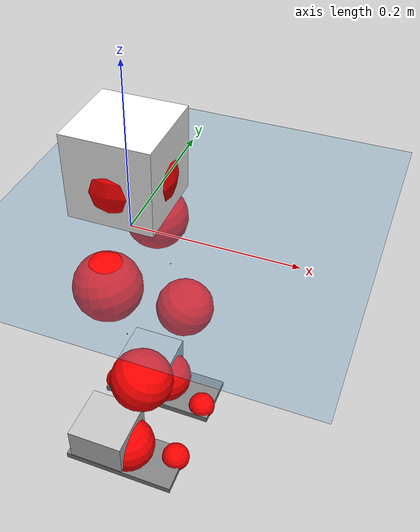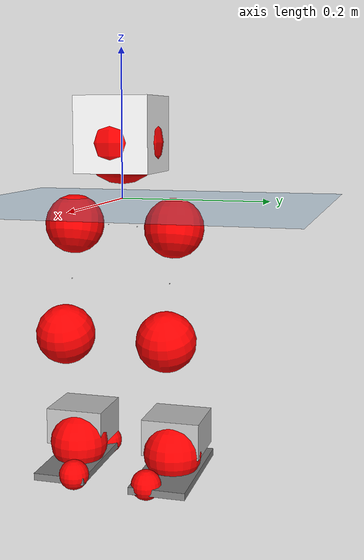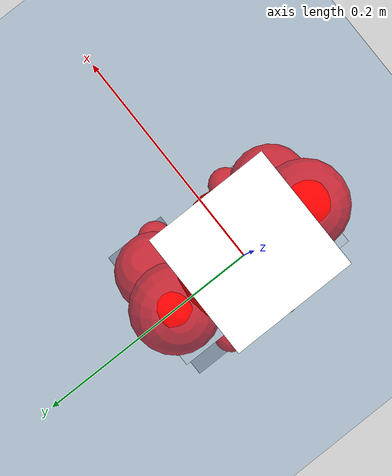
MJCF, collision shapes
<mujoco model="pi_12dof_release_v1">
  <compiler angle="radian" assetdir="assets" balanceinertia="true" inertiafromgeom="false"/>

  <option timestep="0.005" density="1.2" viscosity="2e-05"/>

  <size nkey="1"/>

  <visual>
    <quality shadowsize="8192"/>
    <map shadowclip="0.5"/>
  </visual>

  <default>
    <default class="/">
      <joint armature="0.01" damping="0.01" frictionloss="0.01"/>
      <geom contype="0" conaffinity="0" group="1" solref="-1000 -80"/>
      <site size="0.01 0.005 0.005" group="5"/>
      <general forcelimited="true" biastype="affine" gainprm="20" biasprm="0 -20 -0.5"/>
      <default class="foot">
        <geom size="0.0845 0.036 0.005" type="box" condim="6" group="4" priority="1" friction="0.9 0.2 0.2" solimp="0.015 1 0.005"/>
      </default>
      <default class="reward_collision_sphere">
        <geom group="5" rgba="1 0 0 1"/>
      </default>
    </default>
  </default>

  <asset>
    <texture type="skybox" colorspace="auto" name="//unnamed_texture_0" builtin="gradient" rgb1="0.95 0.95 0.95" rgb2="0.95 0.95 0.95" width="100" height="600"/>
    <texture type="2d" colorspace="auto" name="texplane" builtin="checker" rgb1="0.345 0.575 0.748" rgb2="0.345 0.575 0.748" markrgb="1 1 1" width="512" height="512"/>
    <material name="MatPlane" class="/" texture="texplane" texuniform="true" texrepeat="2 2" specular="0.9"/>
    <mesh name="baselink_1" class="/" file="baselink_1.STL"/>
    <mesh name="r_hip_pitch_link" class="/" file="r_hip_pitch_link.STL"/>
    <mesh name="r_hip_roll_link" class="/" file="r_hip_roll_link.STL"/>
    <mesh name="r_thigh_link" class="/" file="r_thigh_link.STL"/>
    <mesh name="r_calf_link" class="/" file="r_calf_link.STL"/>
    <mesh name="r_ankle_pitch_link" class="/" file="r_ankle_pitch_link.STL"/>
    <mesh name="r_ankle_roll_link" class="/" file="r_ankle_roll_link.STL"/>
    <mesh name="l_hip_pitch_link" class="/" file="l_hip_pitch_link.STL"/>
    <mesh name="l_hip_roll_link" class="/" file="l_hip_roll_link.STL"/>
    <mesh name="l_thigh_link" class="/" file="l_thigh_link.STL"/>
    <mesh name="l_calf_link" class="/" file="l_calf_link.STL"/>
    <mesh name="l_ankle_pitch_link" class="/" file="l_ankle_pitch_link.STL"/>
    <mesh name="l_ankle_roll_link" class="/" file="l_ankle_roll_link.STL"/>
  </asset>

  <worldbody>
    <geom name="floor" class="/" size="100 100 0.125" type="plane" group="0" material="MatPlane"/>
    <light name="toplight_shadow" class="/" pos="0 0 5" dir="0.0990148 0.0990148 -0.990148" type="directional" ambient="0.04 0.04 0.04" diffuse="0.55 0.55 0.55" specular="0.12 0.12 0.12"/>
    <light name="toplight_fill" class="/" pos="0 0 5" dir="0.0990148 0.0990148 -0.990148" type="directional" castshadow="false" ambient="0.04 0.04 0.04" diffuse="0.3 0.3 0.3" specular="0.08 0.08 0.08"/>
    <body name="trunk" pos="0.000236033 -9.82266e-05 -0.000792957" quat="1 7.48707e-05 0.000465593 0.000149932">
      <inertial pos="0.000383169 -0.00190167 0.0446425" quat="0.695395 0.00947272 0.00927565 0.718506" mass="2.26734" diaginertia="0.0121718 0.00529675 0.00631345"/>
      <joint name="//unnamed_joint_0" type="free"/>
      <geom name="//unnamed_geom_1" class="/" type="mesh" density="0" rgba="1 1 1 1" mesh="baselink_1"/>
      <geom name="//unnamed_geom_2" class="/" size="0.0504747 0.0504747 0.0504747" pos="0 0 0.086872" type="box" rgba="1 1 1 1"/>
      <geom name="//unnamed_geom_3" class="reward_collision_sphere" size="0.0555221" pos="0 0 0.076013"/>
      <site name="imu" class="/" pos="0.00673286 0.000453202 -0.00663346" size="0.0100949"/>
      <camera name="track" class="/" pos="0 -1.79703 0" quat="0.707107 0.707107 0 0" mode="trackcom"/>
      <camera name="ego_camera" class="/" pos="0.0783048 0 0.195462" quat="-0.5 -0.5 0.5 0.5"/>
      <body name="r_hip_pitch_link" pos="-0.000166825 -0.0200933 -0.0349469" quat="0.992201 -5.48878e-05 -0.124649 3.35666e-05">
        <inertial pos="0.00110379 -0.0507285 4.74416e-05" quat="-0.0190398 0.70603 -0.0283246 0.707359" mass="0.366963" diaginertia="0.000131211 5.56859e-05 0.000122098"/>
        <joint name="r_hip_pitch_joint" class="/" pos="0 0 0" axis="0.00181938 -0.99999 0.00398228" range="-1.73857 1.21766" armature="0.00964666" damping="0.0131094" frictionloss="0.0105874"/>
        <geom name="//unnamed_geom_4" class="/" type="mesh" density="0" rgba="0.75294 0.75294 0.75294 1" mesh="r_hip_pitch_link"/>
        <geom name="//unnamed_geom_5" class="/" size="0.000504747 0.000504747 0.000504747" type="box" rgba="0.75294 0.75294 0.75294 1"/>
        <body name="r_hip_roll_link" pos="0.00105535 -0.0482599 -0.000529686" quat="1 -8.31345e-06 0.00025238 0.000413942">
          <inertial pos="-0.000643429 9.01291e-06 -0.0674087" quat="0.705592 -0.0802055 -0.082137 0.699257" mass="0.399174" diaginertia="0.000412996 0.000158656 0.00019187"/>
          <joint name="r_hip_roll_joint" class="/" pos="0 0 0" axis="-1 -6.00836e-05 0.000895007" stiffness="0.000274325" range="-0.109309 0.495522" armature="0.0103902" damping="0" frictionloss="0.0108551"/>
          <geom name="//unnamed_geom_6" class="/" type="mesh" density="0" rgba="0.75294 0.75294 0.75294 1" mesh="r_hip_roll_link"/>
          <geom name="//unnamed_geom_7" class="/" size="0.000504747 0.000504747 0.000504747" type="box" rgba="0.75294 0.75294 0.75294 1"/>
          <geom name="//unnamed_geom_8" class="reward_collision_sphere" size="0.0403797"/>
          <body name="r_thigh_link" pos="-9.84064e-05 0.00187356 -0.0750059" quat="1 -8.7779e-05 0.000127588 5.51375e-05">
            <inertial pos="-5.46011e-05 0.000348329 -0.0505738" quat="0.737384 0.675473 -0.000441431 0.000953808" mass="0.115697" diaginertia="0.000153097 5.54368e-05 8.72027e-05"/>
            <joint name="r_thigh_joint" class="/" pos="0 0 0" axis="0.000132725 -0.00038453 -1" range="-0.29973 0.597309" armature="0.0108765" damping="0.00972111" frictionloss="0.00961771"/>
            <geom name="//unnamed_geom_9" class="/" type="mesh" density="0" rgba="0.75294 0.75294 0.75294 1" mesh="r_thigh_link"/>
            <geom name="//unnamed_geom_10" class="/" size="0.000504747 0.000504747 0.000504747" type="box" rgba="0.75294 0.75294 0.75294 1"/>
            <body name="r_calf_link" pos="-0.00134184 -0.00347411 -0.0762825" quat="0.947643 -3.24903e-05 0.319332 3.74329e-05">
              <inertial pos="5.09584e-06 -0.00291941 -0.0754495" quat="0.999946 0.00166725 0.00680201 0.00763619" mass="0.839774" diaginertia="0.00437295 0.00209396 0.000264707"/>
              <joint name="r_calf_joint" class="/" pos="0 0 0" axis="0.0030543 -0.999995 -0.00113584" stiffness="0.0017505" range="-1.65104 0.628592" armature="0.0106348" damping="0.0114601" frictionloss="0.0102019"/>
              <geom name="//unnamed_geom_11" class="/" type="mesh" density="0" rgba="0.75294 0.75294 0.75294 1" mesh="r_calf_link"/>
              <geom name="//unnamed_geom_12" class="/" size="0.000504747 0.000504747 0.000504747" type="box" rgba="0.75294 0.75294 0.75294 1"/>
              <geom name="//unnamed_geom_13" class="reward_collision_sphere" size="0.0403797"/>
              <body name="r_ankle_pitch_link" pos="8.32586e-05 0.00127124 -0.152847" quat="0.980009 -4.72463e-05 -0.198952 -0.000275926">
                <inertial pos="0.0062536 0.00340313 0.000549859" quat="0.00322972 0.70873 0.000335495 0.705472" mass="0.180955" diaginertia="0.00038284 0.000128414 0.000183294"/>
                <joint name="r_ankle_pitch_joint" class="/" pos="0 0 0" axis="0.00336303 -0.999994 0.000768111" range="-1.27937 0.493317" armature="0.00972554" damping="0.00329067" frictionloss="0.00989433"/>
                <geom name="//unnamed_geom_14" class="/" type="mesh" density="0" rgba="0.75294 0.75294 0.75294 1" mesh="r_ankle_pitch_link"/>
                <geom name="//unnamed_geom_15" class="/" size="0.0393702 0.0403797 0.0252373" type="box" rgba="0.75294 0.75294 0.75294 1"/>
                <body name="r_ankle_roll_link" pos="0.0801807 0.00380809 -0.000187168" quat="1 -0.000295638 8.02539e-05 -0.000171144">
                  <inertial pos="-0.0252975 0.000115392 -0.0160838" quat="0.560069 0.424021 0.439232 0.560004" mass="0.530569" diaginertia="0.00139197 0.000613614 0.000430316"/>
                  <joint name="r_ankle_roll_joint" class="/" pos="0 0 0" axis="-0.999995 0.000125378 0.00312964" range="-0.159082 0.143907" armature="0.0108592" damping="0.00619269" frictionloss="0.00995206"/>
                  <geom name="//unnamed_geom_16" class="/" type="mesh" density="0" rgba="0.75294 0.75294 0.75294 1" mesh="r_ankle_roll_link"/>
                  <geom name="//unnamed_geom_17" class="/" type="mesh" rgba="0.75294 0.75294 0.75294 1" mesh="r_ankle_roll_link"/>
                  <geom name="right_foot" class="foot" size="0.0806232 0.0353951 0.00477904" pos="-0.0532473 0 -0.0477796"/>
                  <geom name="//unnamed_geom_19" class="reward_collision_sphere" size="0.0403797" pos="-0.0522032 0 -0.021718"/>
                  <geom name="//unnamed_geom_20" class="reward_collision_sphere" size="0.0201899" pos="0.015661 0.0179703 -0.043436"/>
                  <geom name="//unnamed_geom_21" class="reward_collision_sphere" size="0.0201899" pos="-0.125288 0.0179703 -0.043436"/>
                  <site name="right_foot" class="foot" pos="-0.0532473 0 -0.0477796" size="0.0100949"/>
                </body>
              </body>
            </body>
          </body>
        </body>
      </body>
      <body name="l_hip_pitch_link" pos="0.000801395 0.0211598 -0.0366354" quat="0.992195 1.70459e-06 -0.124693 2.11118e-05">
        <inertial pos="0.000835406 0.0479241 -0.00181731" quat="-0.0390288 0.704544 0.0285585 0.70801" mass="0.408754" diaginertia="0.000166322 6.26455e-05 0.0001566"/>
        <joint name="l_hip_pitch_joint" class="/" pos="0 0 0" axis="0.00232764 0.999997 -0.00109487" range="-1.24155 1.75533" armature="0.00996587" damping="0.00812094" frictionloss="0.0102866"/>
        <geom name="//unnamed_geom_22" class="/" type="mesh" density="0" rgba="0.75294 0.75294 0.75294 1" mesh="l_hip_pitch_link"/>
        <geom name="//unnamed_geom_23" class="/" size="0.000504747 0.000504747 0.000504747" type="box" rgba="0.75294 0.75294 0.75294 1"/>
        <body name="l_hip_roll_link" pos="-0.000431313 0.0514571 -0.000454172" quat="1 3.08406e-05 -0.000350676 -0.000135231">
          <inertial pos="-0.00334237 -0.00084878 -0.0680073" quat="0.699086 -0.0753092 -0.077789 0.706793" mass="0.405453" diaginertia="0.000404965 0.000162537 0.000192381"/>
          <joint name="l_hip_roll_joint" class="/" pos="0 0 0" axis="-0.999996 0.00216943 0.00161415" range="-0.515828 0.118113" armature="0.0101952" damping="0.00658594" frictionloss="0.0104959"/>
          <geom name="//unnamed_geom_24" class="/" type="mesh" density="0" rgba="0.75294 0.75294 0.75294 1" mesh="l_hip_roll_link"/>
          <geom name="//unnamed_geom_25" class="/" size="0.000504747 0.000504747 0.000504747" type="box" rgba="0.75294 0.75294 0.75294 1"/>
          <geom name="//unnamed_geom_26" class="reward_collision_sphere" size="0.0403797"/>
          <body name="l_thigh_link" pos="0.000179835 -0.00130319 -0.0742194" quat="1 4.27336e-05 0.000177766 0.000154824">
            <inertial pos="-0.000583448 -0.000770977 -0.050692" quat="0.676421 0.736511 -0.0014728 0.00199223" mass="0.118869" diaginertia="0.000159604 5.74277e-05 8.8991e-05"/>
            <joint name="l_thigh_joint" class="/" pos="0 0 0" axis="0.000894755 0.00117679 -0.999999" range="-0.631062 0.310309" armature="0.0097336" damping="0.00272191" frictionloss="0.0100487"/>
            <geom name="//unnamed_geom_27" class="/" type="mesh" density="0" rgba="0.75294 0.75294 0.75294 1" mesh="l_thigh_link"/>
            <geom name="//unnamed_geom_28" class="/" size="0.000504747 0.000504747 0.000504747" type="box" rgba="0.75294 0.75294 0.75294 1"/>
            <body name="l_calf_link" pos="0.00135812 0.00087737 -0.0770105" quat="0.947671 0.000311 0.319248 0.000214576">
              <inertial pos="0.00116551 0.00198542 -0.0777863" quat="0.999904 0.0115738 -0.00590687 0.00479972" mass="0.823266" diaginertia="0.00425752 0.00199935 0.00025768"/>
              <joint name="l_calf_joint" class="/" pos="0 0 0" axis="0.00128465 0.999999 -0.000250906" range="-0.653781 1.63538" armature="0.0103155" damping="0.00204213" frictionloss="0.0096556"/>
              <geom name="//unnamed_geom_29" class="/" type="mesh" density="0" rgba="0.75294 0.75294 0.75294 1" mesh="l_calf_link"/>
              <geom name="//unnamed_geom_30" class="/" size="0.000504747 0.000504747 0.000504747" type="box" rgba="0.75294 0.75294 0.75294 1"/>
              <geom name="//unnamed_geom_31" class="reward_collision_sphere" size="0.0403797"/>
              <body name="l_ankle_pitch_link" pos="0.0021928 -0.00045987 -0.153347" quat="0.980046 0.000273165 -0.198768 5.73718e-05">
                <inertial pos="0.00476411 -0.00162011 0.00024496" quat="-0.00186854 0.707501 0.00228274 0.706706" mass="0.182055" diaginertia="0.000383733 0.000130362 0.000180952"/>
                <joint name="l_ankle_pitch_joint" class="/" pos="0 0 0" axis="0.00121099 0.999999 0.000937448" range="-0.487675 1.31322" armature="0.0103091" damping="0.00885776" frictionloss="0.00960406"/>
                <geom name="//unnamed_geom_32" class="/" type="mesh" density="0" rgba="0.75294 0.75294 0.75294 1" mesh="l_ankle_pitch_link"/>
                <geom name="//unnamed_geom_33" class="/" size="0.0393702 0.0403797 0.0252373" type="box" rgba="0.75294 0.75294 0.75294 1"/>
                <body name="l_ankle_roll_link" pos="0.0776978 0.000861242 0.000111376" quat="1 3.45367e-05 0.000168033 -0.000679478">
                  <inertial pos="-0.0253712 0.000538186 -0.0156224" quat="0.55919 0.430641 0.434634 0.559418" mass="0.539904" diaginertia="0.00142615 0.000604038 0.000432211"/>
                  <joint name="l_ankle_roll_joint" class="/" pos="0 0 0" axis="-1 -0.000960874 -3.46205e-05" range="-0.138922 0.158814" armature="0.0103076" damping="0.01587" frictionloss="0.00959472"/>
                  <geom name="//unnamed_geom_34" class="/" type="mesh" density="0" rgba="0.75294 0.75294 0.75294 1" mesh="l_ankle_roll_link"/>
                  <geom name="//unnamed_geom_35" class="/" type="mesh" rgba="0.75294 0.75294 0.75294 1" mesh="l_ankle_roll_link"/>
                  <geom name="left_foot" class="foot" size="0.0846332 0.0382641 0.00483717" pos="-0.0532473 0 -0.0477796"/>
                  <geom name="//unnamed_geom_37" class="reward_collision_sphere" size="0.0403797" pos="-0.0522032 0 -0.021718"/>
                  <geom name="//unnamed_geom_38" class="reward_collision_sphere" size="0.0201899" pos="0.015661 -0.0179703 -0.043436"/>
                  <geom name="//unnamed_geom_39" class="reward_collision_sphere" size="0.0201899" pos="-0.125288 -0.0179703 -0.043436"/>
                  <site name="left_foot" class="foot" pos="-0.0532473 0 -0.0477796" size="0.0100949"/>
                </body>
              </body>
            </body>
          </body>
        </body>
      </body>
    </body>
  </worldbody>

  <contact>
    <pair class="/" geom1="floor" geom2="right_foot" name="//unnamed_contact_1"/>
    <pair class="/" geom1="floor" geom2="left_foot" name="//unnamed_contact_0"/>
  </contact>

  <actuator>
    <general name="r_hip_pitch_joint" class="/" joint="r_hip_pitch_joint" forcerange="-21.5408 21.5408" gainprm="19.2343" biasprm="0 -19.2343 -0.507375"/>
    <general name="r_hip_roll_joint" class="/" joint="r_hip_roll_joint" forcerange="-21.1424 21.1424" gainprm="19.2343" biasprm="0 -19.2343 -0.507375"/>
    <general name="r_thigh_joint" class="/" joint="r_thigh_joint" forcerange="-21.4239 21.4239" gainprm="19.2343" biasprm="0 -19.2343 -0.507375"/>
    <general name="r_calf_joint" class="/" joint="r_calf_joint" forcerange="-22.152 22.152" gainprm="19.2343" biasprm="0 -19.2343 -0.507375"/>
    <general name="r_ankle_pitch_joint" class="/" joint="r_ankle_pitch_joint" forcerange="-21.5315 21.5315" gainprm="19.2343" biasprm="0 -19.2343 -0.507375"/>
    <general name="r_ankle_roll_joint" class="/" joint="r_ankle_roll_joint" forcerange="-20.7812 20.7812" gainprm="19.2343" biasprm="0 -19.2343 -0.507375"/>
    <general name="l_hip_pitch_joint" class="/" joint="l_hip_pitch_joint" forcerange="-21.0897 21.0897" gainprm="19.2343" biasprm="0 -19.2343 -0.507375"/>
    <general name="l_hip_roll_joint" class="/" joint="l_hip_roll_joint" forcerange="-19.9928 19.9928" gainprm="19.2343" biasprm="0 -19.2343 -0.507375"/>
    <general name="l_thigh_joint" class="/" joint="l_thigh_joint" forcerange="-21.8015 21.8015" gainprm="19.2343" biasprm="0 -19.2343 -0.507375"/>
    <general name="l_calf_joint" class="/" joint="l_calf_joint" forcerange="-20.9462 20.9462" gainprm="19.2343" biasprm="0 -19.2343 -0.507375"/>
    <general name="l_ankle_pitch_joint" class="/" joint="l_ankle_pitch_joint" forcerange="-21.0296 21.0296" gainprm="19.2343" biasprm="0 -19.2343 -0.507375"/>
    <general name="l_ankle_roll_joint" class="/" joint="l_ankle_roll_joint" forcerange="-21.0641 21.0641" gainprm="19.2343" biasprm="0 -19.2343 -0.507375"/>
  </actuator>

  <sensor>
    <gyro site="imu" name="imu_angular_velocity"/>
    <velocimeter site="imu" name="imu_linear_velocity"/>
    <framelinvel objtype="site" objname="left_foot" name="left_foot_global_linear_velocity"/>
    <framelinvel objtype="site" objname="right_foot" name="right_foot_global_linear_velocity"/>
  </sensor>

  <keyframe>
    <key name="home" qpos="0 0 0.291 1 0 0 0 0.4 0 0 -0.8 0.4 0 -0.4 0 0 0.8 -0.4 0"/>
  </keyframe>
</mujoco>
